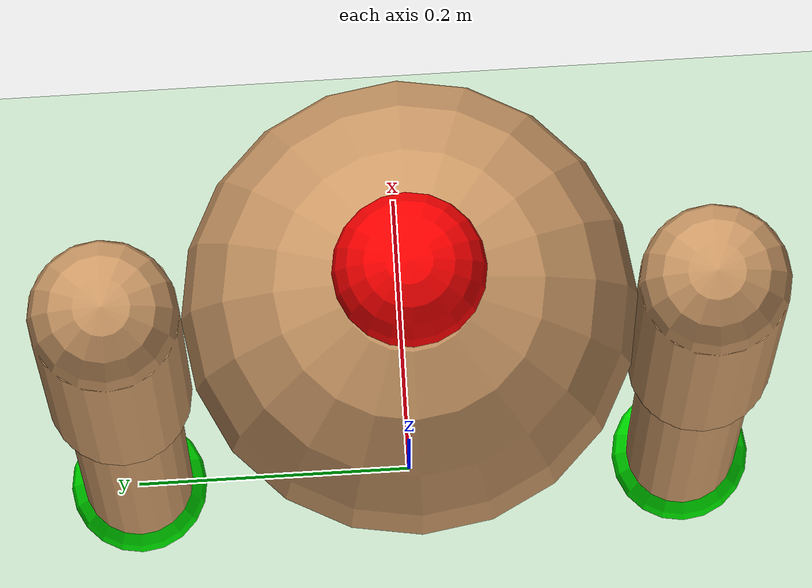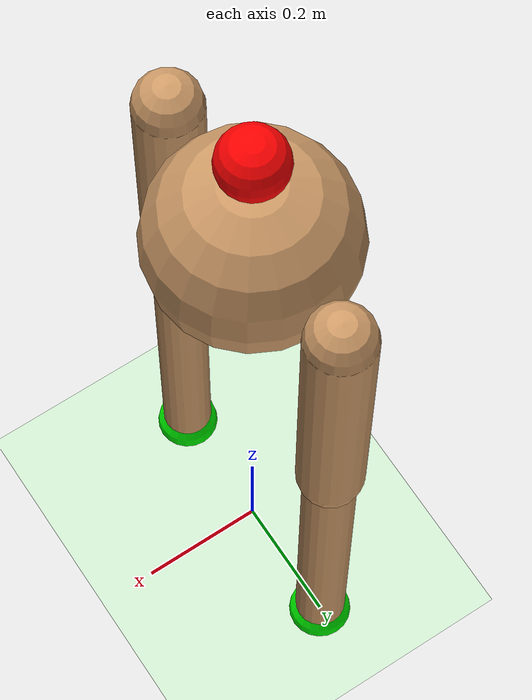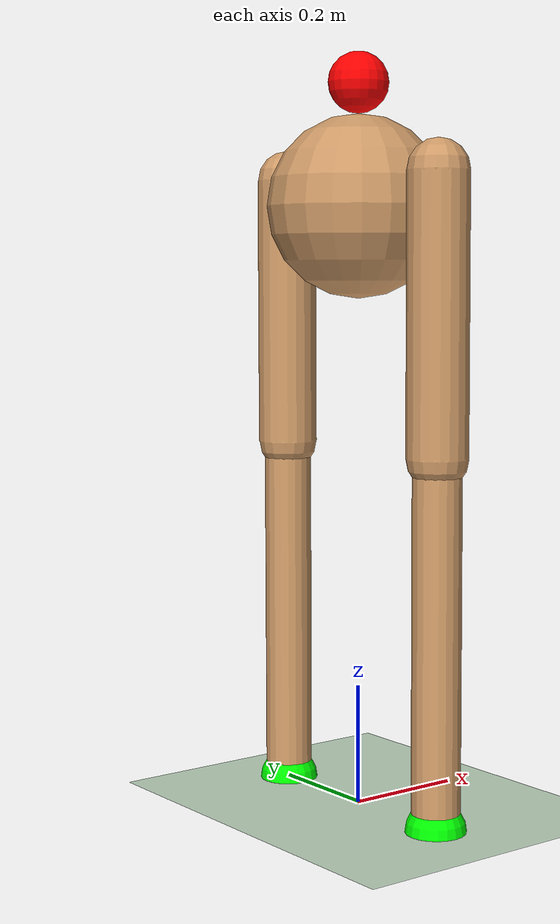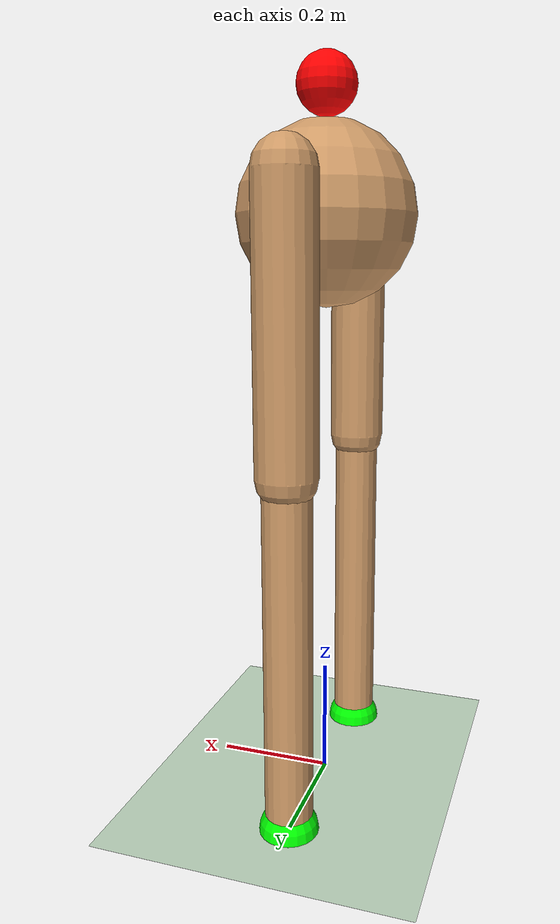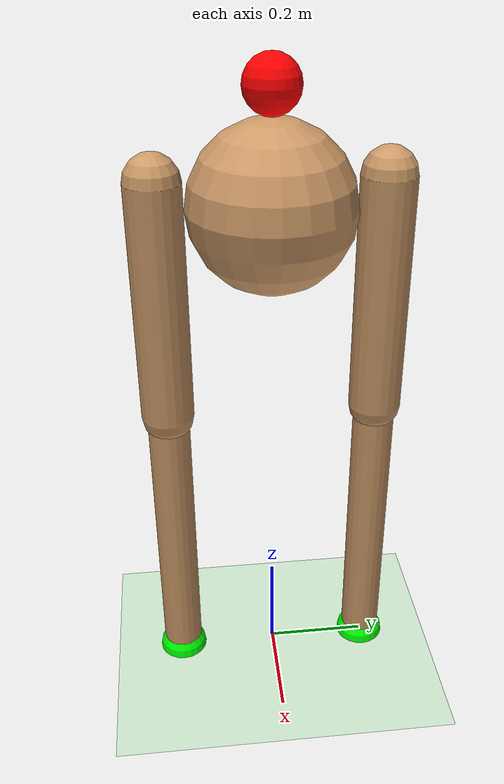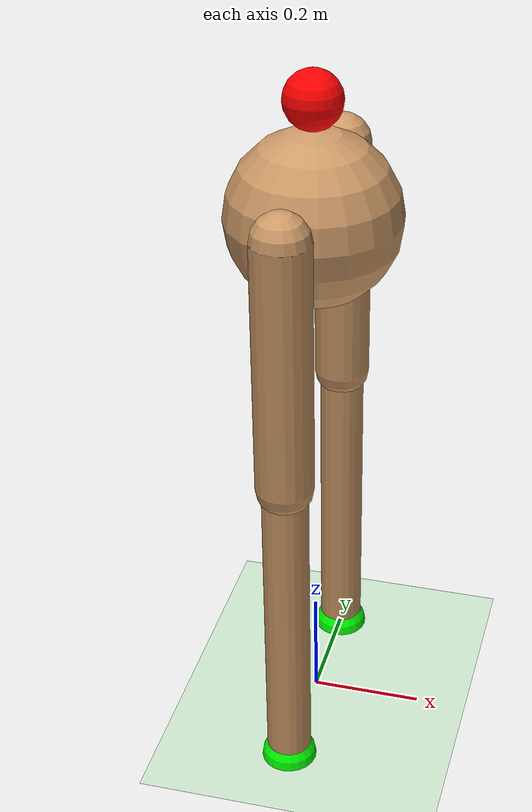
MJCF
<mujoco model="walker_telescopic-v0">
  <compiler angle="degree" coordinate="global" inertiafromgeom="true"/>
  <default>
    <joint armature="1" damping="1" limited="true"/>
    <geom conaffinity="1" condim="1" contype="1" margin="0.001" material="geom" rgba="0.8 0.6 0.4 1" solimp=".8 .8 .01" solref=".02 1"/>
    <motor ctrllimited="true" ctrlrange="-0.4 0.4"/>
  </default>
  <option integrator="RK4" timestep="0.002"/>
  <visual>
    <map znear="0.02"/>
  </visual>
  <worldbody>
    <light cutoff="100" diffuse="1 1 1" dir="-0 0 -1.3" directional="true" exponent="1" pos="0 0 1.3" specular="0.1 0.1 0.1"/>
    <geom conaffinity="1" condim="3" name="floor" pos="0 0 0" rgba="0.8 0.9 0.8 1" size="20 20 0.125" type="plane" material="MatPlane"/>
    <body name="torso" pos="0 0 1.0">
      <camera name="track" mode="trackcom" pos="0 -3 1" xyaxes="1 0 0 0 0 1"/>
      <camera name="track_front" mode="trackcom" pos="-3 0 1" xyaxes="0 -1 0 0 0 1"/>
      <camera name="track_top" mode="trackcom" pos="0 0 3" xyaxes="0 1 0 -1 0 0"/>
      <joint armature="0" axis="1 0 0" damping="0" limited="false" name="rootx" pos="0 0 0" stiffness="0" type="slide"/>
      <joint armature="0" axis="0 0 1" damping="0" limited="false" name="rootz" pos="0 0 0" ref="1" stiffness="0" type="slide"/>
      <geom friction="0.9" pos="0 0 1.0" size="0.15" name="torso_geom" type="sphere"/>
      <body name="tiny_head" pos="0 0 1.2">
        <geom friction="0.9" pos="0 0 1.2" size="0.05" name="head_geom" type="sphere" rgba="1 0 0 1"/>
      </body>
      <body name="thigh_left" pos="0 0.2 1.0">
        <joint axis="0 -1 0" name="thigh_left_joint" pos="0 0.2 1.0" range="-90 90" type="hinge"/>
        <geom friction="0.9" fromto="0 0.2 1.05 0 0.2 0.6" name="thigh_left_geom" size="0.05" type="capsule"/>
        <body name="shin_left" pos="0 0.2 0.6">
          <joint axis="0 0 -1" name="shin_left_joint" pos="0 0.2 0.6" range="-0.05 0.05" type="slide"/>
          <geom friction="0.9" fromto="0 0.2 0.6 0 0.2 0" name="shin_left_geom" size="0.04" type="capsule"/>
          <body name="foot_left" pos="0 0.2 0">
            <site name="toe_left" type="sphere" size="0.05" rgba="0 1 0 1" pos="0 0.2 0"/>
          </body>
        </body>
      </body>
      <body name="thigh_right" pos="0 -0.2 1.0">
        <joint axis="0 -1 0" name="thigh_right_joint" pos="0 -0.2 1.0" range="-90 90" type="hinge"/>
        <geom friction="0.9" fromto="0 -0.2 1.05 0 -0.2 0.6" name="thigh_right_geom" size="0.05" type="capsule"/>
        <body name="shin_right" pos="0 -0.2 0.6">
          <joint axis="0 0 -1" name="shin_right_joint" pos="0 -0.2 0.6" range="-0.05 0.05" type="slide"/>
          <geom friction="0.9" fromto="0 -0.2 0.6 0 -0.2 0" name="shin_right_geom" size="0.04" type="capsule"/>
          <body name="foot_right" pos="0 -0.2 0">
            <site name="toe_right" type="sphere" size="0.05" rgba="0 1 0 1" pos="0 -0.2 0"/>
          </body>
        </body>
      </body>
    </body>
  </worldbody>
  <actuator>
    <motor ctrllimited="true" ctrlrange="-1.0 1.0" gear="50000.0" joint="thigh_left_joint"/>
    <motor ctrllimited="true" ctrlrange="-1.0 1.0" gear="50000.0" joint="thigh_right_joint"/>
    <motor ctrllimited="true" ctrlrange="-1.0 1.0" gear="20000.0" joint="shin_left_joint"/>
    <motor ctrllimited="true" ctrlrange="-1.0 1.0" gear="20000.0" joint="shin_right_joint"/>
  </actuator>
    <asset>
      <texture type="skybox" builtin="gradient" rgb1="0.4 0.5 0.6" rgb2="0 0 0" width="100" height="100"/>
      <texture builtin="flat" height="1278" mark="cross" markrgb="1 1 1" name="texgeom" random="0.01" rgb1="0.8 0.6 0.4" rgb2="0.8 0.6 0.4" type="cube" width="127"/>
      <texture builtin="checker" height="100" name="texplane" rgb1="0 0 0" rgb2="0.8 0.8 0.8" type="2d" width="100"/>
      <material name="MatPlane" reflectance="0.5" shininess="1" specular="1" texrepeat="60 60" texture="texplane"/>
      <material name="geom" texture="texgeom" texuniform="true"/>
  </asset>
</mujoco>
